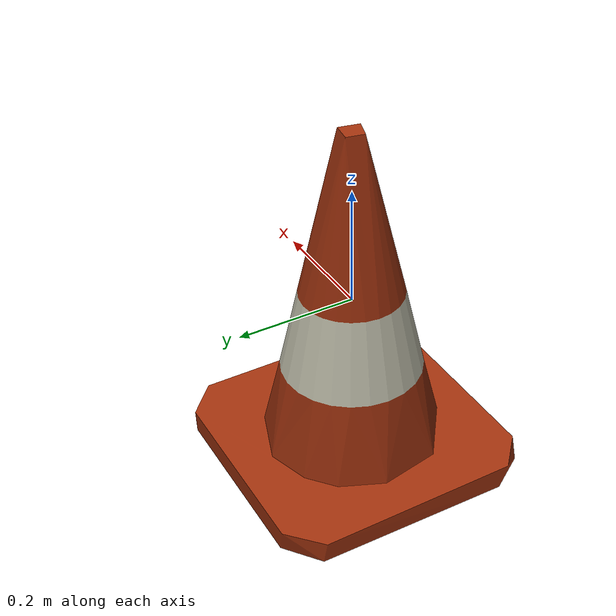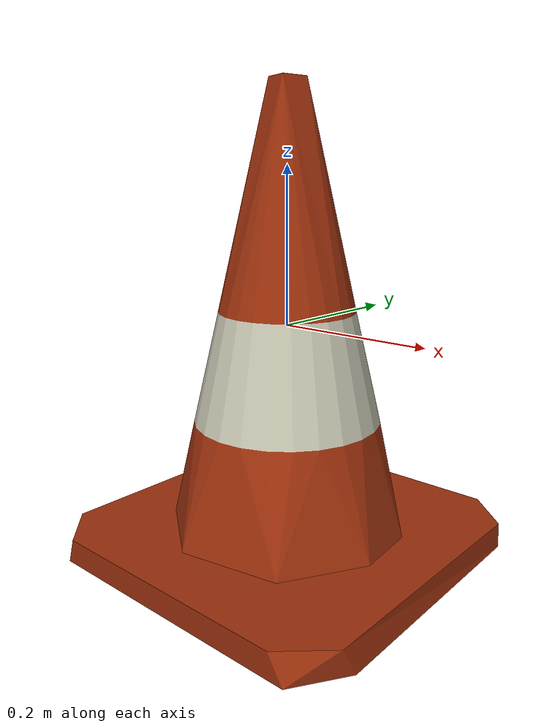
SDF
<sdf version="1.4">
  <model name="cone_orange">
    <link name="link">
    <inertial>
        <mass>0.1</mass>
        <inertia>
          <ixx>1</ixx>
          <iyy>1</iyy>
        </inertia>
      </inertial>
      <collision name="collision">
        <geometry>
          <mesh>
            <uri>model://cone/cone_orange.dae</uri>
     	      <scale>2.0 2.0 2.0</scale>
          </mesh>
        </geometry>
      </collision>
      <visual name="visual">
        <geometry>
          <mesh>
            <uri>model://cone/cone_orange.dae</uri>
            <scale>2.0 2.0 2.0</scale>
          </mesh>
        </geometry>
      </visual>
    </link>
  </model>
</sdf>
